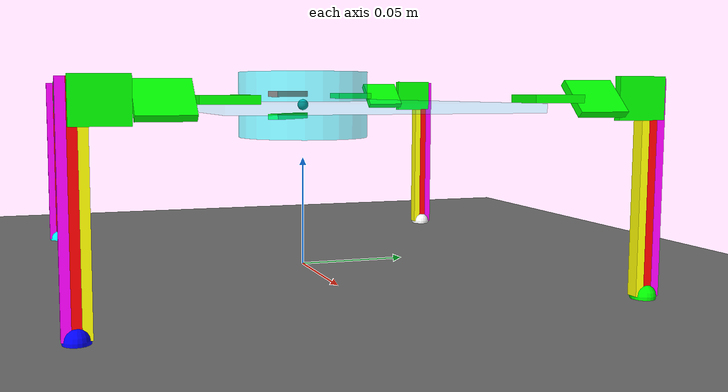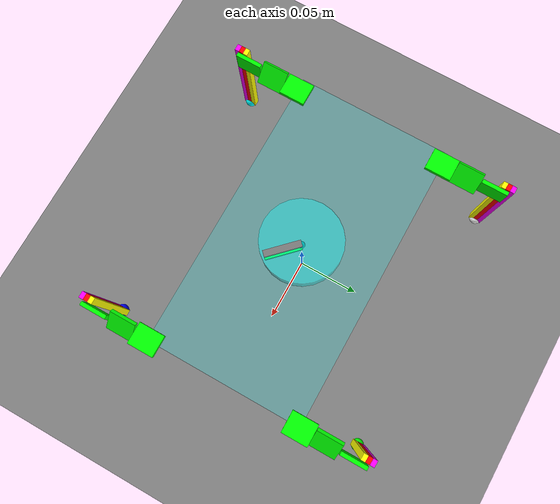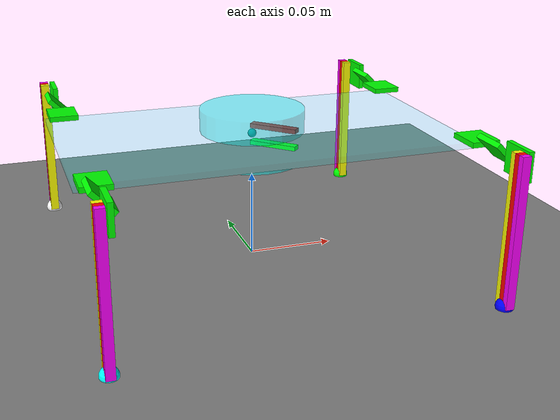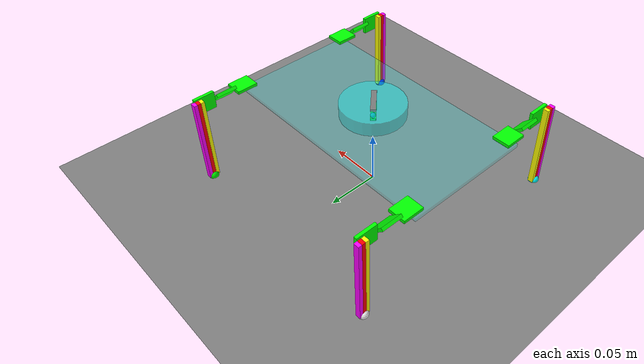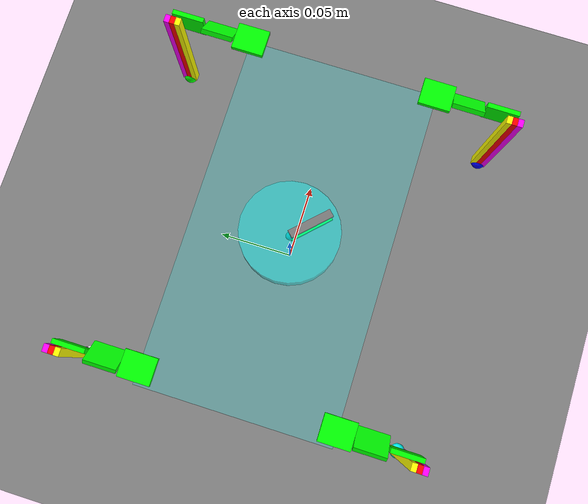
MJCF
<mujoco>
	<option gravity="0 0 -10" timestep="0.001" iterations="200" />
	<option timestep="0.001" iterations="150" />
	<asset>
		<material name="floor" texture="check1" texrepeat="2 2" texuniform="true" />
		<texture name="check1" builtin="checker" type="2d" width="256" height="256" rgb1="1 1 1" rgb2="0 0 0" />

		<material name="object" texture="check2" texrepeat="5 5" texuniform="true" />
		<texture name="check2" builtin="checker" type="2d" width="256" height="256" rgb1="0 0 1" rgb2="0 1 0" />
	</asset>
	<worldbody>
		<light diffuse=".5 .5 .5" pos="0 0 12" dir="0 0 -1" />
		<geom name="floor" size="25 25 .05" type="plane" material="floor" condim="3" friction="0.8 0.1 0.1" />

<body pos="0 0 .075">
			<joint type="free" />
			<geom type="box" mass="0.016" contype="0" conaffinity="0" rgba="0 1 1 .2" size="0.11 0.06 .00175" friction="0.8 0.1 0.1" />

	<body pos="0 0 0">
	<geom type="cylinder" mass=".1" size=".03 .015" contype="0" conaffinity="0" rgba="0 1 1 .5" friction="0.8 0.1 0.1" />

		<body pos="0 0 0" name="rotor" euler="0 0 45">

			<geom type="sphere" mass=".15" material="object" size=".0025" friction="0.8 0.1 0.1" />

			<body pos="0 -.014 .005">
				<joint type="hinge" name="R1" damping="0.00000" axis="0 0 1" pos="0 .014 0" />
				<geom type="box" mass="0.012" size=".0025 .014 .00125" rgba="1 0 0 1" friction="0.8 0.1 0.1" />
			</body>

			<body pos="0 -.014 -.005">
				<joint type="hinge" name="R2" damping="0.00000" axis="0 0 -1" pos="0 .014 0" />
				<geom type="box" mass="0.012" size=".0025 .014 .00125" rgba="0 1 0 1" friction="0.8 0.1 0.1" />
			</body>

		</body>

</body>

	<body pos="-0.10 -0.06 0.003">

		<joint type="hinge" name="X11" axis="-1 0 0" stiffness="1.062072" damping="2.21209" springref="0" pos="0 .01 0" />

		<joint type="hinge" name="Z11" axis="0 0 -1" stiffness="1.062072" damping="2.21209" springref="0" pos="0 .01 0" />
		<geom type="box" density="1200" size=".0083 .01 .0015" rgba="0 1 0 1" friction="0.8 0.1 0.1" />

		<body pos="0 -.02 0" euler=" 0 45 0">

			<joint type="hinge" name="X12" axis="-1 0 0" stiffness="1.062072" damping="2.21209" springref="0" pos="0 .01 0" />

			<joint type="hinge" name="Y12" axis="0 -1 0" stiffness="0.183" damping="0.24" springref="0" pos="0 .01 0" />

			<joint type="hinge" name="Z12" axis="0 0 -1" stiffness="1.062072" damping="2.21209" springref="0" pos="0 .01 0" />
			<geom type="box" density="1200" size=".0083 .01 .0015" rgba="0 1 0 1" friction="0.8 0.1 0.1" />

			<body pos="0 -.02 0" euler=" 0 45 0">

				<joint type="hinge" name="X13" axis="-1 0 0" stiffness="1.062072" damping="2.21209" springref="0" pos="0 .01 0" />

				<joint type="hinge" name="Y13" axis="0 -1 0" stiffness="0.183" damping="0.24" springref="0" pos="0 .01 0" />

				<joint type="hinge" name="Z13" axis="0 0 -1" stiffness="1.062072" damping="2.21209" springref="0" pos="0 .01 0" />
				<geom type="box" density="1200" size=".0083 .01 .0015" rgba="0 1 0 1" friction="0.8 0.1 0.1" />

				<body pos=".035 -.0085 -0.005" euler="90 90 0">

					<geom type="box" density="1240" size=".0017 .0025 .0425" pos="-.0034 0 0" rgba="1 0 1 1" friction="0.8 0.1 0.1" solref="0.003 1.2" solimp="0.9 0.95 0.001" />
					<geom type="box" density="1240" size=".0017 .0025 .0425" pos="0 0 0" rgba="1 0 0 1" friction="0.8 0.1 0.1" solref="0.003 1.2" solimp="0.9 0.95 0.001" />
					<geom type="box" density="1240" size=".0017 .0025 .0425" pos=".0034 0 0" rgba="1 1 0 1" friction="0.8 0.1 0.1" solref="0.003 1.2" solimp="0.9 0.95 0.001" />

					<site name="S1" pos="0 0 0.0425" rgba="0 1 1 1" />

				</body>

			</body>
		</body>
	</body>

	<body pos="0.11 0.06 0.0035" euler="0 0 180">

		<joint type="hinge" name="X21" axis="-1 0 0" stiffness="1.062072" damping="2.21209" springref="0" pos="0 .01 0" />

		<joint type="hinge" name="Z21" axis="0 0 -1" stiffness="1.062072" damping="2.21209" springref="0" pos="0 .01 0" />

		<geom type="box" density="1200" size=".0083 .01 .0015" rgba="0 1 0 1" friction="0.8 0.1 0.1" />

		<body pos="0 -.02 0" euler=" 0 -45 0">

			<joint type="hinge" name="X22" axis="-1 0 0" stiffness="1.062072" damping="2.21209" springref="0" pos="0 .01 0" />

			<joint type="hinge" name="Y22" axis="0 -1 0" stiffness="0.183" damping="0.24" springref="0" pos="0 .01 0" />

			<joint type="hinge" name="Z22" axis="0 0 -1" stiffness="1.062072" damping="2.21209" springref="0" pos="0 .01 0" />
			<geom type="box" density="1200" size=".0083 .01 .0015" rgba="0 1 0 1" friction="0.8 0.1 0.1" />

			<body pos="0 -.02 0" euler=" 0 -45 0">

				<joint type="hinge" name="X23" axis="-1 0 0" stiffness="1.062072" damping="2.21209" springref="0" pos="0 .01 0" />

				<joint type="hinge" name="Y23" axis="0 -1 0" stiffness="0.183" damping="0.24" springref="0" pos="0 .01 0" />

				<joint type="hinge" name="Z23" axis="0 0 -1" stiffness="1.062072" damping="2.21209" springref="0" pos="0 .01 0" />

				<geom type="box" density="1200" size=".0083 .01 .0015" rgba="0 1 0 1" friction="0.8 0.1 0.1" />

				<body pos=" -.035 -.0085 -0.005" euler="90 90 0">
					<geom type="box" density="1240" size=".0017 .0025 .0425" pos="-.0034 0 0" rgba="1 0 1 1" friction="0.8 0.1 0.1" solref="0.003 1.2" solimp="0.9 0.95 0.001" />
					<geom type="box" density="1240" size=".0017 .0025 .0425" pos="0 0 0" rgba="1 0 0 1" friction="0.8 0.1 0.1" solref="0.003 1.2" solimp="0.9 0.95 0.001" />
					<geom type="box" density="1240" size=".0017 .0025 .0425" pos=".0034 0 0" rgba="1 1 0 1" friction="0.8 0.1 0.1" solref="0.003 1.2" solimp="0.9 0.95 0.001" />
					<site name="S2" pos="0 0 -0.0425" rgba="0 1 0 1" />
				</body>

			</body>
		</body>
	</body>

	<body pos="0.11 -0.06 0.0035">

		<joint type="hinge" name="X31" axis="-1 0 0" stiffness="1.062072" damping="2.21209" springref="0" pos="0 .01 0" />

		<joint type="hinge" name="Z31" axis="0 0 -1" stiffness="1.062072" damping="2.21209" springref="0" pos="0 .01 0" />

		<geom type="box" density="1200" size=".0083 .01 .0015" rgba="0 1 0 1" friction="0.8 0.1 0.1" />

		<body pos="0 -.02 0" euler=" 0 45 0">

			<joint type="hinge" name="X32" axis="-1 0 0" stiffness="1.062072" damping="2.21209" springref="0" pos="0 .01 0" />

			<joint type="hinge" name="Y32" axis="0 -1 0" stiffness="0.183" damping="0.24" springref="0" pos="0 .01 0" />

			<joint type="hinge" name="Z32" axis="0 0 -1" stiffness="1.062072" damping="2.21209" springref="0" pos="0 .01 0" />

			<geom type="box" density="1200" size=".0083 .01 .0015" rgba="0 1 0 1" friction="0.8 0.1 0.1" />

			<body pos="0 -.02 0" euler=" 0 45 0">

				<joint type="hinge" name="X33" axis="-1 0 0" stiffness="1.062072" damping="2.21209" springref="0" pos="0 .01 0" />

				<joint type="hinge" name="Y33" axis="0 -1 0" stiffness="0.183" damping="0.24" springref="0" pos="0 .01 0" />

				<joint type="hinge" name="Z33" axis="0 0 -1" stiffness="1.062072" damping="2.21209" springref="0" pos="0 .01 0" />
				<geom type="box" density="1200" size=".0083 .01 .0015" rgba="0 1 0 1" friction="0.8 0.1 0.1" />

				<body pos=" .035 -.0085 -0.005" euler="90 90 0">
					<geom type="box" density="1240" size=".0017 .0025 .0425" pos="-.0034 0 0" rgba="1 0 1 1" friction="0.8 0.1 0.1" solref="0.003 1.2" solimp="0.9 0.95 0.001" />
					<geom type="box" density="1240" size=".0017 .0025 .0425" pos="0 0 0" rgba="1 0 0 1" friction="0.8 0.1 0.1" solref="0.003 1.2" solimp="0.9 0.95 0.001" />
					<geom type="box" density="1240" size=".0017 .0025 .0425" pos=".0034 0 0" rgba="1 1 0 1" friction="0.8 0.1 0.1" solref="0.003 1.2" solimp="0.9 0.95 0.001" />
					<site name="S3" pos="0 0 0.0425" rgba="0 0 1 1" />
				</body>

			</body>
		</body>
	</body>

	<body pos="-0.1 0.06 0.0035" euler="0 0 180">

		<joint type="hinge" name="X41" axis="-1 0 0" stiffness="1.062072" damping="2.21209" springref="0" pos="0 .01 0" />

		<joint type="hinge" name="Z41" axis="0 0 -1" stiffness="1.062072" damping="2.21209" springref="0" pos="0 .01 0" />
		<geom type="box" density="1200" size=".0083 .01 .0015" rgba="0 1 0 1" friction="0.8 0.1 0.1" />

		<body pos="0 -.02 0" euler=" 0 -45 0">

			<joint type="hinge" name="X42" axis="-1 0 0" stiffness="1.062072" damping="2.21209" springref="0" pos="0 .01 0" />

			<joint type="hinge" name="Y42" axis="0 -1 0" stiffness="0.183" damping="0.24" springref="0" pos="0 .01 0" />

			<joint type="hinge" name="Z42" axis="0 0 -1" stiffness="1.062072" damping="2.21209" springref="0" pos="0 .01 0" />
			<geom type="box" density="1200" size=".0083 .01 .0015" rgba="0 1 0 1" friction="0.8 0.1 0.1" />

			<body pos="0 -.02 0" euler=" 0 -45 0">

				<joint type="hinge" name="X43" axis="-1 0 0" stiffness="1.062072" damping="2.21209" springref="0" pos="0 .01 0" />

				<joint type="hinge" name="Y43" axis="0 -1 0" stiffness="0.183" damping="0.24" springref="0" pos="0 .01 0" />

				<joint type="hinge" name="Z43" axis="0 0 -1" stiffness="1.062072" damping="2.21209" springref="0" pos="0 .01 0" />
				<geom type="box" density="1200" size=".0083 .01 .0015" rgba="0 1 0 1" friction="0.8 0.1 0.1" />

				<body pos=" -.035 -.0085 -0.005" euler="90 90 0">
					<geom type="box" density="1240" size=".0017 .0025 .0425" pos="-.0034 0 0" rgba="1 0 1 1" friction="0.8 0.1 0.1" solref="0.003 1.2" solimp="0.9 0.95 0.001" />
					<geom type="box" density="1240" size=".0017 .0025 .0425" pos="0 0 0" rgba="1 0 0 1" friction="0.8 0.1 0.1" solref="0.003 1.2" solimp="0.9 0.95 0.001" />
					<geom type="box" density="1240" size=".0017 .0025 .0425" pos=".0034 0 0" rgba="1 1 0 1" friction="0.8 0.1 0.1" solref="0.003 1.2" solimp="0.9 0.95 0.001" />
					<site name="S4" pos="0 0 -0.0425" rgba="1 1 1 1" />
				</body>

			</body>
		</body>
	</body>

</body>

	</worldbody>

	<equality>
		<joint joint1="R1" joint2="R2" polycoef="0 1 0 0 0" />
	</equality>

	<actuator>
		<motor joint="R1" gear="0.1" />
		<motor joint="R2" gear="0.1" />

	</actuator>

	<sensor>
		<force name="Site1" site="S1" />
		<force name="Site2" site="S2" />
		<force name="Site3" site="S3" />
		<force name="Site4" site="S4" />
	</sensor>

</mujoco>
